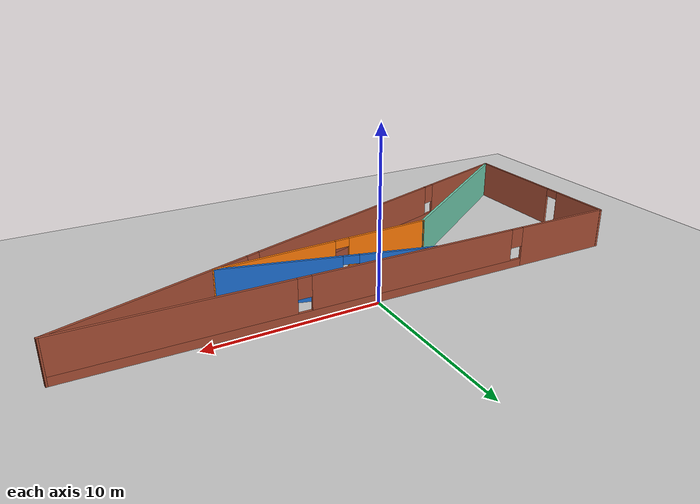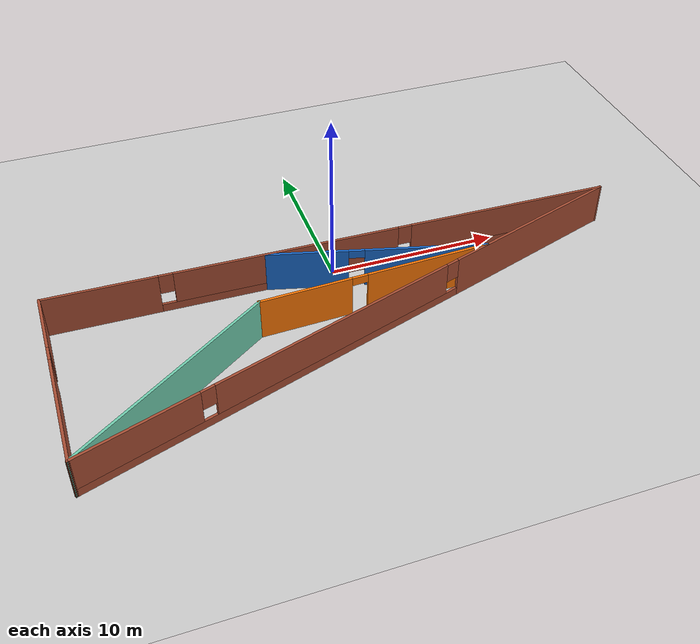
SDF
<sdf version="1.6">
 <world name="WhereAmI">
  <light name="sun" type="directional">
   <pose>0 0 10 0 -0 0</pose>
   <diffuse>0.8 0.8 0.8 1</diffuse>
   <specular>0.2 0.2 0.2 1</specular>
   <attenuation>
    <range>1000</range>
    <constant>0.9</constant>
    <linear>0.01</linear>
    <quadratic>0.001</quadratic>
   </attenuation>
   <direction>-0.5 0.1 -0.9</direction>
  </light>
  <model name="ground_plane">
   <static>1</static>
   <link name="link">
    <collision name="collision">
     <geometry><plane><normal>0 0 1</normal><size>100 100</size></plane></geometry>
     <surface>
      <contact><collide_bitmask>65535</collide_bitmask></contact>
      <friction><ode><mu>100</mu><mu2>50</mu2></ode></friction>
     </surface>
    </collision>
    <visual name="visual">
     <cast_shadows>0</cast_shadows>
     <geometry><plane><normal>0 0 1</normal><size>100 100</size></plane></geometry>
     <material>
      <script><uri>file://media/materials/scripts/gazebo.material</uri><name>Gazebo/Grey</name></script>
     </material>
    </visual>
   </link>
  </model>
  <gravity>0 0 -9.8</gravity>
  <magnetic_field>6e-06 2.3e-05 -4.2e-05</magnetic_field>
  <atmosphere type="adiabatic"/>
  <scene><ambient>0.4 0.4 0.4 1</ambient><background>0.7 0.7 0.7 1</background><shadows>1</shadows></scene>
  <spherical_coordinates>
   <surface_model>EARTH_WGS84</surface_model>
   <latitude_deg>0</latitude_deg>
   <longitude_deg>0</longitude_deg>
   <elevation>0</elevation>
   <heading_deg>0</heading_deg>
  </spherical_coordinates>
  <gravity>0 0 -9.8</gravity>
  <magnetic_field>6e-06 2.3e-05 -4.2e-05</magnetic_field>
  <atmosphere type="adiabatic"/>
  <physics name="default_physics" default="0" type="ode">
   <max_step_size>0.001</max_step_size>
   <real_time_factor>1</real_time_factor>
   <real_time_update_rate>1000</real_time_update_rate>
  </physics>
  <scene><ambient>0.4 0.4 0.4 1</ambient><background>0.7 0.7 0.7 1</background><shadows>1</shadows></scene>
  <spherical_coordinates>
   <surface_model>EARTH_WGS84</surface_model>
   <latitude_deg>0</latitude_deg>
   <longitude_deg>0</longitude_deg>
   <elevation>0</elevation>
   <heading_deg>0</heading_deg>
  </spherical_coordinates>
  <audio><device>default</device></audio>
  <model name="Building">
   <pose>0.2954 -5.59685 0 0 -0 0</pose>
   <link name="Wall_0">
    <pose>-16.489 0.014665 0 0 -0 1.57343</pose>
    <visual name="Wall_0_Visual_0">
     <pose>-2.36202 0 1.25 0 -0 0</pose>
     <geometry><box><size>6.79601 0.15 2.5</size></box></geometry>
     <material>
      <script><uri>file://media/materials/scripts/gazebo.material</uri><name>Gazebo/Bricks</name></script>
      <ambient>1 1 1 1</ambient>
     </material>
     <meta><layer>0</layer></meta>
    </visual>
    <collision name="Wall_0_Collision_0">
     <geometry><box><size>6.79601 0.15 2.5</size></box></geometry>
     <pose>-2.36202 0 1.25 0 -0 0</pose>
    </collision>
    <visual name="Wall_0_Visual_1">
     <pose>3.848 0 1.25 0 -0 0</pose>
     <geometry><box><size>3.82403 0.15 2.5</size></box></geometry>
     <material>
      <script><uri>file://media/materials/scripts/gazebo.material</uri><name>Gazebo/Bricks</name></script>
      <ambient>1 1 1 1</ambient>
     </material>
     <meta><layer>0</layer></meta>
    </visual>
    <collision name="Wall_0_Collision_1">
     <geometry><box><size>3.82403 0.15 2.5</size></box></geometry>
     <pose>3.848 0 1.25 0 -0 0</pose>
    </collision>
    <visual name="Wall_0_Visual_2">
     <pose>1.48598 0 2.25 0 -0 0</pose>
     <geometry><box><size>0.9 0.15 0.5</size></box></geometry>
     <material>
      <script><uri>file://media/materials/scripts/gazebo.material</uri><name>Gazebo/Bricks</name></script>
      <ambient>1 1 1 1</ambient>
     </material>
     <meta><layer>0</layer></meta>
    </visual>
    <collision name="Wall_0_Collision_2">
     <geometry><box><size>0.9 0.15 0.5</size></box></geometry>
     <pose>1.48598 0 2.25 0 -0 0</pose>
    </collision>
   </link>
   <link name="Wall_1">
    <pose>-0.009033 5.36466 0 0 -0 -0.0197</pose>
    <visual name="Wall_1_Visual_0">
     <pose>-13.3962 0 1.25 0 -0 0</pose>
     <geometry><box><size>6.35403 0.15 2.5</size></box></geometry>
     <material>
      <script><uri>file://media/materials/scripts/gazebo.material</uri><name>Gazebo/Bricks</name></script>
      <ambient>1 1 1 1</ambient>
     </material>
     <meta><layer>0</layer></meta>
    </visual>
    <collision name="Wall_1_Collision_0">
     <geometry><box><size>6.35403 0.15 2.5</size></box></geometry>
     <pose>-13.3962 0 1.25 0 -0 0</pose>
    </collision>
    <visual name="Wall_1_Visual_1">
     <pose>3.17701 0 0.25 0 -0 0</pose>
     <geometry><box><size>26.7924 0.15 0.5</size></box></geometry>
     <material>
      <script><uri>file://media/materials/scripts/gazebo.material</uri><name>Gazebo/Bricks</name></script>
      <ambient>1 1 1 1</ambient>
     </material>
     <meta><layer>0</layer></meta>
    </visual>
    <collision name="Wall_1_Collision_1">
     <geometry><box><size>26.7924 0.15 0.5</size></box></geometry>
     <pose>3.17701 0 0.25 0 -0 0</pose>
    </collision>
    <visual name="Wall_1_Visual_2">
     <pose>-2.92581 0 1.5 0 -0 0</pose>
     <geometry><box><size>12.9867 0.15 2</size></box></geometry>
     <material>
      <script><uri>file://media/materials/scripts/gazebo.material</uri><name>Gazebo/Bricks</name></script>
      <ambient>1 1 1 1</ambient>
     </material>
     <meta><layer>0</layer></meta>
    </visual>
    <collision name="Wall_1_Collision_2">
     <geometry><box><size>12.9867 0.15 2</size></box></geometry>
     <pose>-2.92581 0 1.5 0 -0 0</pose>
    </collision>
    <visual name="Wall_1_Visual_3">
     <pose>10.4704 0 1.5 0 -0 0</pose>
     <geometry><box><size>12.2057 0.15 2</size></box></geometry>
     <material>
      <script><uri>file://media/materials/scripts/gazebo.material</uri><name>Gazebo/Bricks</name></script>
      <ambient>1 1 1 1</ambient>
     </material>
     <meta><layer>0</layer></meta>
    </visual>
    <collision name="Wall_1_Collision_3">
     <geometry><box><size>12.2057 0.15 2</size></box></geometry>
     <pose>10.4704 0 1.5 0 -0 0</pose>
    </collision>
    <visual name="Wall_1_Visual_4">
     <pose>-9.81917 0 1.9 0 -0 0</pose>
     <geometry><box><size>0.8 0.15 1.2</size></box></geometry>
     <material>
      <script><uri>file://media/materials/scripts/gazebo.material</uri><name>Gazebo/Bricks</name></script>
      <ambient>1 1 1 1</ambient>
     </material>
     <meta><layer>0</layer></meta>
    </visual>
    <collision name="Wall_1_Collision_4">
     <geometry><box><size>0.8 0.15 1.2</size></box></geometry>
     <pose>-9.81917 0 1.9 0 -0 0</pose>
    </collision>
    <visual name="Wall_1_Visual_5">
     <pose>3.96754 0 1.9 0 -0 0</pose>
     <geometry><box><size>0.8 0.15 1.2</size></box></geometry>
     <material>
      <script><uri>file://media/materials/scripts/gazebo.material</uri><name>Gazebo/Bricks</name></script>
      <ambient>1 1 1 1</ambient>
     </material>
     <meta><layer>0</layer></meta>
    </visual>
    <collision name="Wall_1_Collision_5">
     <geometry><box><size>0.8 0.15 1.2</size></box></geometry>
     <pose>3.96754 0 1.9 0 -0 0</pose>
    </collision>
   </link>
   <link name="Wall_2">
    <pose>0.000967 -0.315335 0 0 -0 -2.82696</pose>
    <visual name="Wall_2_Visual_0">
     <pose>-11.6503 0 1.25 0 -0 0</pose>
     <geometry><box><size>11.5215 0.15 2.5</size></box></geometry>
     <material>
      <script><uri>file://media/materials/scripts/gazebo.material</uri><name>Gazebo/Bricks</name></script>
      <ambient>1 1 1 1</ambient>
     </material>
     <meta><layer>0</layer></meta>
    </visual>
    <collision name="Wall_2_Collision_0">
     <geometry><box><size>11.5215 0.15 2.5</size></box></geometry>
     <pose>-11.6503 0 1.25 0 -0 0</pose>
    </collision>
    <visual name="Wall_2_Visual_1">
     <pose>5.76077 0 0.25 0 -0 0</pose>
     <geometry><box><size>23.3006 0.15 0.5</size></box></geometry>
     <material>
      <script><uri>file://media/materials/scripts/gazebo.material</uri><name>Gazebo/Bricks</name></script>
      <ambient>1 1 1 1</ambient>
     </material>
     <meta><layer>0</layer></meta>
    </visual>
    <collision name="Wall_2_Collision_1">
     <geometry><box><size>23.3006 0.15 0.5</size></box></geometry>
     <pose>5.76077 0 0.25 0 -0 0</pose>
    </collision>
    <visual name="Wall_2_Visual_2">
     <pose>2.31914 0 1.5 0 -0 0</pose>
     <geometry><box><size>14.8173 0.15 2</size></box></geometry>
     <material>
      <script><uri>file://media/materials/scripts/gazebo.material</uri><name>Gazebo/Bricks</name></script>
      <ambient>1 1 1 1</ambient>
     </material>
     <meta><layer>0</layer></meta>
    </visual>
    <collision name="Wall_2_Collision_2">
     <geometry><box><size>14.8173 0.15 2</size></box></geometry>
     <pose>2.31914 0 1.5 0 -0 0</pose>
    </collision>
    <visual name="Wall_2_Visual_3">
     <pose>13.9694 0 1.5 0 -0 0</pose>
     <geometry><box><size>6.88326 0.15 2</size></box></geometry>
     <material>
      <script><uri>file://media/materials/scripts/gazebo.material</uri><name>Gazebo/Bricks</name></script>
      <ambient>1 1 1 1</ambient>
     </material>
     <meta><layer>0</layer></meta>
    </visual>
    <collision name="Wall_2_Collision_3">
     <geometry><box><size>6.88326 0.15 2</size></box></geometry>
     <pose>13.9694 0 1.5 0 -0 0</pose>
    </collision>
    <visual name="Wall_2_Visual_4">
     <pose>-5.48951 0 1.9 0 -0 0</pose>
     <geometry><box><size>0.8 0.15 1.2</size></box></geometry>
     <material>
      <script><uri>file://media/materials/scripts/gazebo.material</uri><name>Gazebo/Bricks</name></script>
      <ambient>1 1 1 1</ambient>
     </material>
     <meta><layer>0</layer></meta>
    </visual>
    <collision name="Wall_2_Collision_4">
     <geometry><box><size>0.8 0.15 1.2</size></box></geometry>
     <pose>-5.48951 0 1.9 0 -0 0</pose>
    </collision>
    <visual name="Wall_2_Visual_5">
     <pose>10.1278 0 1.9 0 -0 0</pose>
     <geometry><box><size>0.8 0.15 1.2</size></box></geometry>
     <material>
      <script><uri>file://media/materials/scripts/gazebo.material</uri><name>Gazebo/Bricks</name></script>
      <ambient>1 1 1 1</ambient>
     </material>
     <meta><layer>0</layer></meta>
    </visual>
    <collision name="Wall_2_Collision_5">
     <geometry><box><size>0.8 0.15 1.2</size></box></geometry>
     <pose>10.1278 0 1.9 0 -0 0</pose>
    </collision>
   </link>
   <link name="Wall_3">
    <collision name="Wall_3_Collision">
     <geometry><box><size>13.2734 0.15 2.5</size></box></geometry>
     <pose>0 0 1.25 0 -0 0</pose>
    </collision>
    <visual name="Wall_3_Visual">
     <pose>0 0 1.25 0 -0 0</pose>
     <geometry><box><size>13.2734 0.15 2.5</size></box></geometry>
     <material>
      <script><uri>file://media/materials/scripts/gazebo.material</uri><name>Gazebo/Grey</name></script>
      <ambient>0.435294 0.796078 0.67451 1</ambient>
     </material>
     <meta><layer>0</layer></meta>
    </visual>
    <pose>-11.0648 -1.95606 0 0 -0 0.60171</pose>
   </link>
   <link name="Wall_4">
    <pose>1.02457 1.99269 0 0 -0 0.035086</pose>
    <visual name="Wall_4_Visual_0">
     <pose>-4.10049 0 1.25 0 -0 0</pose>
     <geometry><box><size>5.31733 0.15 2.5</size></box></geometry>
     <material>
      <script><uri>file://media/materials/scripts/gazebo.material</uri><name>Gazebo/Grey</name></script>
      <ambient>0.996078 0.47451 0.0196078 1</ambient>
     </material>
     <meta><layer>0</layer></meta>
    </visual>
    <collision name="Wall_4_Collision_0">
     <geometry><box><size>5.31733 0.15 2.5</size></box></geometry>
     <pose>-4.10049 0 1.25 0 -0 0</pose>
    </collision>
    <visual name="Wall_4_Visual_1">
     <pose>3.10866 0 1.25 0 -0 0</pose>
     <geometry><box><size>7.30099 0.15 2.5</size></box></geometry>
     <material>
      <script><uri>file://media/materials/scripts/gazebo.material</uri><name>Gazebo/Grey</name></script>
      <ambient>0.996078 0.47451 0.0196078 1</ambient>
     </material>
     <meta><layer>0</layer></meta>
    </visual>
    <collision name="Wall_4_Collision_1">
     <geometry><box><size>7.30099 0.15 2.5</size></box></geometry>
     <pose>3.10866 0 1.25 0 -0 0</pose>
    </collision>
    <visual name="Wall_4_Visual_2">
     <pose>-0.991829 0 2.25 0 -0 0</pose>
     <geometry><box><size>0.9 0.15 0.5</size></box></geometry>
     <material>
      <script><uri>file://media/materials/scripts/gazebo.material</uri><name>Gazebo/Grey</name></script>
      <ambient>0.996078 0.47451 0.0196078 1</ambient>
     </material>
     <meta><layer>0</layer></meta>
    </visual>
    <collision name="Wall_4_Collision_2">
     <geometry><box><size>0.9 0.15 0.5</size></box></geometry>
     <pose>-0.991829 0 2.25 0 -0 0</pose>
    </collision>
   </link>
   <link name="Wall_6">
    <pose>1.74002 3.82537 0 0 -0 2.87979</pose>
    <visual name="Wall_6_Visual_0">
     <pose>-2.76788 0 1.25 0 -0 0</pose>
     <geometry><box><size>6.96425 0.15 2.5</size></box></geometry>
     <material>
      <script><uri>file://media/materials/scripts/gazebo.material</uri><name>Gazebo/Grey</name></script>
      <ambient>0.109804 0.443137 0.847059 1</ambient>
     </material>
     <meta><layer>0</layer></meta>
    </visual>
    <collision name="Wall_6_Collision_0">
     <geometry><box><size>6.96425 0.15 2.5</size></box></geometry>
     <pose>-2.76788 0 1.25 0 -0 0</pose>
    </collision>
    <visual name="Wall_6_Visual_1">
     <pose>3.93213 0 1.25 0 -0 0</pose>
     <geometry><box><size>4.63575 0.15 2.5</size></box></geometry>
     <material>
      <script><uri>file://media/materials/scripts/gazebo.material</uri><name>Gazebo/Grey</name></script>
      <ambient>0.109804 0.443137 0.847059 1</ambient>
     </material>
     <meta><layer>0</layer></meta>
    </visual>
    <collision name="Wall_6_Collision_1">
     <geometry><box><size>4.63575 0.15 2.5</size></box></geometry>
     <pose>3.93213 0 1.25 0 -0 0</pose>
    </collision>
    <visual name="Wall_6_Visual_2">
     <pose>1.16425 0 2.25 0 -0 0</pose>
     <geometry><box><size>0.9 0.15 0.5</size></box></geometry>
     <material>
      <script><uri>file://media/materials/scripts/gazebo.material</uri><name>Gazebo/Grey</name></script>
      <ambient>0.109804 0.443137 0.847059 1</ambient>
     </material>
     <meta><layer>0</layer></meta>
    </visual>
    <collision name="Wall_6_Collision_2">
     <geometry><box><size>0.9 0.15 0.5</size></box></geometry>
     <pose>1.16425 0 2.25 0 -0 0</pose>
    </collision>
   </link>
   <static>1</static>
  </model>
  <plugin name="collision_map_creator" filename="libcollision_map_creator.so"/>
 </world>
</sdf>
